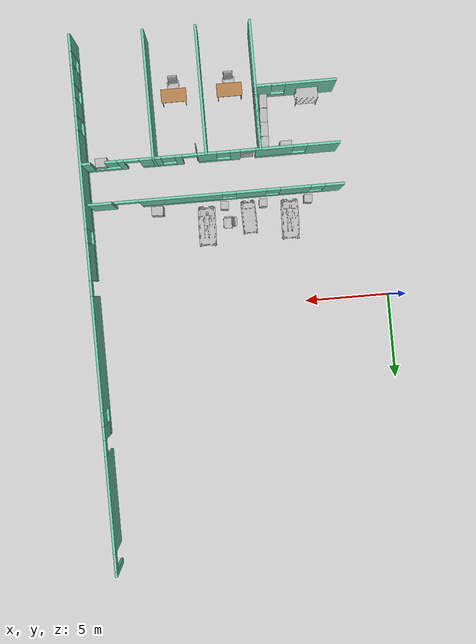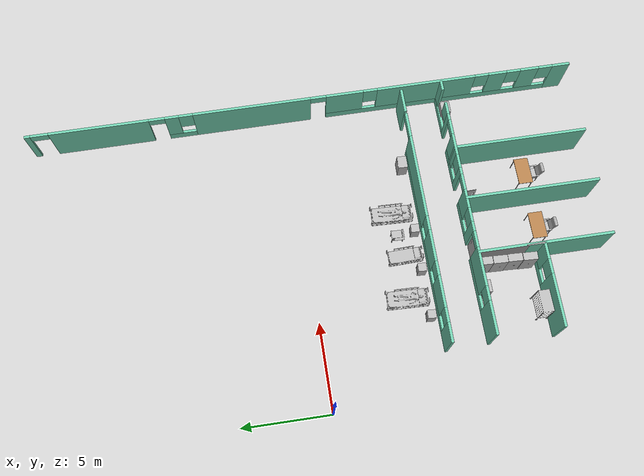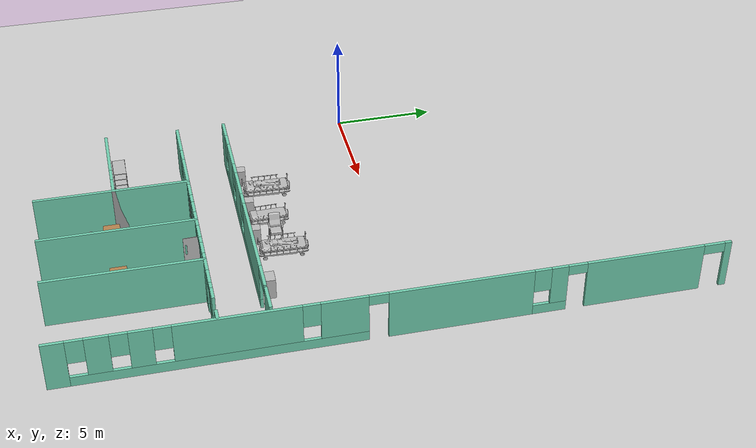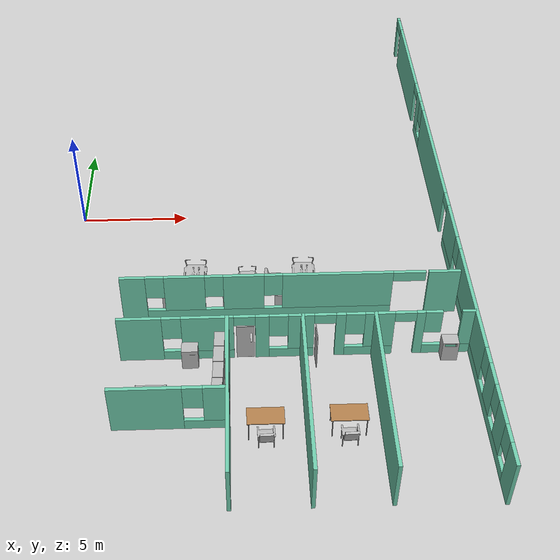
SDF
<sdf version="1.6">
 <world name="default">
  <model name="ground_plane">
   <static>1</static>
   <link name="link">
    <collision name="collision">
     <geometry><plane><normal>0 0 1</normal><size>100 100</size></plane></geometry>
     <surface><friction><ode><mu>100</mu><mu2>50</mu2></ode></friction></surface>
    </collision>
    <visual name="visual">
     <cast_shadows>0</cast_shadows>
     <geometry><plane><normal>0 0 1</normal><size>100 100</size></plane></geometry>
     <material>
      <script><uri>file://media/materials/scripts/gazebo.material</uri><name>Gazebo/Grey</name></script>
     </material>
    </visual>
   </link>
  </model>
  <model name="Hospital_empty">
   <pose>0.7078 0.61575 0 0 -0 0</pose>
   <link name="Wall_52">
    <pose>9.2135 -9.54001 0 0 -0 0.00176</pose>
    <visual name="Wall_52_Visual_0">
     <pose>-6.52704 0 1.25 0 -0 0</pose>
     <geometry><box><size>1.86895 0.15 2.5</size></box></geometry>
     <material>
      <script><uri>file://media/materials/scripts/gazebo.material</uri><name>Gazebo/Grey</name></script>
      <ambient>0.435294 0.796078 0.67451 1</ambient>
     </material>
    </visual>
    <collision name="Wall_52_Collision_0">
     <geometry><box><size>1.86895 0.15 2.5</size></box></geometry>
     <pose>-6.52704 0 1.25 0 -0 0</pose>
    </collision>
    <visual name="Wall_52_Visual_1">
     <pose>-1.42899 0 1.25 0 -0 0</pose>
     <geometry><box><size>0.56652 0.15 2.5</size></box></geometry>
     <material>
      <script><uri>file://media/materials/scripts/gazebo.material</uri><name>Gazebo/Grey</name></script>
      <ambient>0.435294 0.796078 0.67451 1</ambient>
     </material>
    </visual>
    <collision name="Wall_52_Collision_1">
     <geometry><box><size>0.56652 0.15 2.5</size></box></geometry>
     <pose>-1.42899 0 1.25 0 -0 0</pose>
    </collision>
    <visual name="Wall_52_Visual_2">
     <pose>1.84327 0 1.25 0 -0 0</pose>
     <geometry><box><size>0.408722 0.15 2.5</size></box></geometry>
     <material>
      <script><uri>file://media/materials/scripts/gazebo.material</uri><name>Gazebo/Grey</name></script>
      <ambient>0.435294 0.796078 0.67451 1</ambient>
     </material>
    </visual>
    <collision name="Wall_52_Collision_2">
     <geometry><box><size>0.408722 0.15 2.5</size></box></geometry>
     <pose>1.84327 0 1.25 0 -0 0</pose>
    </collision>
    <visual name="Wall_52_Visual_3">
     <pose>5.17521 0 1.25 0 -0 0</pose>
     <geometry><box><size>0.370303 0.15 2.5</size></box></geometry>
     <material>
      <script><uri>file://media/materials/scripts/gazebo.material</uri><name>Gazebo/Grey</name></script>
      <ambient>0.435294 0.796078 0.67451 1</ambient>
     </material>
    </visual>
    <collision name="Wall_52_Collision_3">
     <geometry><box><size>0.370303 0.15 2.5</size></box></geometry>
     <pose>5.17521 0 1.25 0 -0 0</pose>
    </collision>
    <visual name="Wall_52_Visual_4">
     <pose>-4.10241 0 0.25 0 -0 0</pose>
     <geometry><box><size>2.98031 0.15 0.5</size></box></geometry>
     <material>
      <script><uri>file://media/materials/scripts/gazebo.material</uri><name>Gazebo/Grey</name></script>
      <ambient>0.435294 0.796078 0.67451 1</ambient>
     </material>
    </visual>
    <collision name="Wall_52_Collision_4">
     <geometry><box><size>2.98031 0.15 0.5</size></box></geometry>
     <pose>-4.10241 0 0.25 0 -0 0</pose>
    </collision>
    <visual name="Wall_52_Visual_5">
     <pose>-0.203413 0 0.25 0 -0 0</pose>
     <geometry><box><size>1.88464 0.15 0.5</size></box></geometry>
     <material>
      <script><uri>file://media/materials/scripts/gazebo.material</uri><name>Gazebo/Grey</name></script>
      <ambient>0.435294 0.796078 0.67451 1</ambient>
     </material>
    </visual>
    <collision name="Wall_52_Collision_5">
     <geometry><box><size>1.88464 0.15 0.5</size></box></geometry>
     <pose>-0.203413 0 0.25 0 -0 0</pose>
    </collision>
    <visual name="Wall_52_Visual_6">
     <pose>3.06885 0 0.25 0 -0 0</pose>
     <geometry><box><size>2.04244 0.15 0.5</size></box></geometry>
     <material>
      <script><uri>file://media/materials/scripts/gazebo.material</uri><name>Gazebo/Grey</name></script>
      <ambient>0.435294 0.796078 0.67451 1</ambient>
     </material>
    </visual>
    <collision name="Wall_52_Collision_6">
     <geometry><box><size>2.04244 0.15 0.5</size></box></geometry>
     <pose>3.06885 0 0.25 0 -0 0</pose>
    </collision>
    <visual name="Wall_52_Visual_7">
     <pose>6.41094 0 0.25 0 -0 0</pose>
     <geometry><box><size>2.10114 0.15 0.5</size></box></geometry>
     <material>
      <script><uri>file://media/materials/scripts/gazebo.material</uri><name>Gazebo/Grey</name></script>
      <ambient>0.435294 0.796078 0.67451 1</ambient>
     </material>
    </visual>
    <collision name="Wall_52_Collision_7">
     <geometry><box><size>2.10114 0.15 0.5</size></box></geometry>
     <pose>6.41094 0 0.25 0 -0 0</pose>
    </collision>
    <visual name="Wall_52_Visual_8">
     <pose>-3.70241 0 1.5 0 -0 0</pose>
     <geometry><box><size>2.18031 0.15 2</size></box></geometry>
     <material>
      <script><uri>file://media/materials/scripts/gazebo.material</uri><name>Gazebo/Grey</name></script>
      <ambient>0.435294 0.796078 0.67451 1</ambient>
     </material>
    </visual>
    <collision name="Wall_52_Collision_8">
     <geometry><box><size>2.18031 0.15 2</size></box></geometry>
     <pose>-3.70241 0 1.5 0 -0 0</pose>
    </collision>
    <visual name="Wall_52_Visual_9">
     <pose>-3.70241 0 1.5 0 -0 0</pose>
     <geometry><box><size>2.18031 0.15 2</size></box></geometry>
     <material>
      <script><uri>file://media/materials/scripts/gazebo.material</uri><name>Gazebo/Grey</name></script>
      <ambient>0.435294 0.796078 0.67451 1</ambient>
     </material>
    </visual>
    <collision name="Wall_52_Collision_9">
     <geometry><box><size>2.18031 0.15 2</size></box></geometry>
     <pose>-3.70241 0 1.5 0 -0 0</pose>
    </collision>
    <visual name="Wall_52_Visual_10">
     <pose>0.196587 0 1.5 0 -0 0</pose>
     <geometry><box><size>1.08464 0.15 2</size></box></geometry>
     <material>
      <script><uri>file://media/materials/scripts/gazebo.material</uri><name>Gazebo/Grey</name></script>
      <ambient>0.435294 0.796078 0.67451 1</ambient>
     </material>
    </visual>
    <collision name="Wall_52_Collision_10">
     <geometry><box><size>1.08464 0.15 2</size></box></geometry>
     <pose>0.196587 0 1.5 0 -0 0</pose>
    </collision>
    <visual name="Wall_52_Visual_11">
     <pose>0.196587 0 1.5 0 -0 0</pose>
     <geometry><box><size>1.08464 0.15 2</size></box></geometry>
     <material>
      <script><uri>file://media/materials/scripts/gazebo.material</uri><name>Gazebo/Grey</name></script>
      <ambient>0.435294 0.796078 0.67451 1</ambient>
     </material>
    </visual>
    <collision name="Wall_52_Collision_11">
     <geometry><box><size>1.08464 0.15 2</size></box></geometry>
     <pose>0.196587 0 1.5 0 -0 0</pose>
    </collision>
    <visual name="Wall_52_Visual_12">
     <pose>3.46885 0 1.5 0 -0 0</pose>
     <geometry><box><size>1.24244 0.15 2</size></box></geometry>
     <material>
      <script><uri>file://media/materials/scripts/gazebo.material</uri><name>Gazebo/Grey</name></script>
      <ambient>0.435294 0.796078 0.67451 1</ambient>
     </material>
    </visual>
    <collision name="Wall_52_Collision_12">
     <geometry><box><size>1.24244 0.15 2</size></box></geometry>
     <pose>3.46885 0 1.5 0 -0 0</pose>
    </collision>
    <visual name="Wall_52_Visual_13">
     <pose>3.46885 0 1.5 0 -0 0</pose>
     <geometry><box><size>1.24244 0.15 2</size></box></geometry>
     <material>
      <script><uri>file://media/materials/scripts/gazebo.material</uri><name>Gazebo/Grey</name></script>
      <ambient>0.435294 0.796078 0.67451 1</ambient>
     </material>
    </visual>
    <collision name="Wall_52_Collision_13">
     <geometry><box><size>1.24244 0.15 2</size></box></geometry>
     <pose>3.46885 0 1.5 0 -0 0</pose>
    </collision>
    <visual name="Wall_52_Visual_14">
     <pose>7.16907 0 1.5 0 -0 0</pose>
     <geometry><box><size>0.584877 0.15 2</size></box></geometry>
     <material>
      <script><uri>file://media/materials/scripts/gazebo.material</uri><name>Gazebo/Grey</name></script>
      <ambient>0.435294 0.796078 0.67451 1</ambient>
     </material>
    </visual>
    <collision name="Wall_52_Collision_14">
     <geometry><box><size>0.584877 0.15 2</size></box></geometry>
     <pose>7.16907 0 1.5 0 -0 0</pose>
    </collision>
    <visual name="Wall_52_Visual_15">
     <pose>-5.19256 0 1.9 0 -0 0</pose>
     <geometry><box><size>0.8 0.15 1.2</size></box></geometry>
     <material>
      <script><uri>file://media/materials/scripts/gazebo.material</uri><name>Gazebo/Grey</name></script>
      <ambient>0.435294 0.796078 0.67451 1</ambient>
     </material>
    </visual>
    <collision name="Wall_52_Collision_15">
     <geometry><box><size>0.8 0.15 1.2</size></box></geometry>
     <pose>-5.19256 0 1.9 0 -0 0</pose>
    </collision>
    <visual name="Wall_52_Visual_16">
     <pose>-0.745733 0 1.9 0 -0 0</pose>
     <geometry><box><size>0.8 0.15 1.2</size></box></geometry>
     <material>
      <script><uri>file://media/materials/scripts/gazebo.material</uri><name>Gazebo/Grey</name></script>
      <ambient>0.435294 0.796078 0.67451 1</ambient>
     </material>
    </visual>
    <collision name="Wall_52_Collision_16">
     <geometry><box><size>0.8 0.15 1.2</size></box></geometry>
     <pose>-0.745733 0 1.9 0 -0 0</pose>
    </collision>
    <visual name="Wall_52_Visual_17">
     <pose>2.44763 0 1.9 0 -0 0</pose>
     <geometry><box><size>0.8 0.15 1.2</size></box></geometry>
     <material>
      <script><uri>file://media/materials/scripts/gazebo.material</uri><name>Gazebo/Grey</name></script>
      <ambient>0.435294 0.796078 0.67451 1</ambient>
     </material>
    </visual>
    <collision name="Wall_52_Collision_17">
     <geometry><box><size>0.8 0.15 1.2</size></box></geometry>
     <pose>2.44763 0 1.9 0 -0 0</pose>
    </collision>
    <visual name="Wall_52_Visual_18">
     <pose>5.7185 0 1.9 0 -0 0</pose>
     <geometry><box><size>0.716268 0.15 1.2</size></box></geometry>
     <material>
      <script><uri>file://media/materials/scripts/gazebo.material</uri><name>Gazebo/Grey</name></script>
      <ambient>0.435294 0.796078 0.67451 1</ambient>
     </material>
    </visual>
    <collision name="Wall_52_Collision_18">
     <geometry><box><size>0.716268 0.15 1.2</size></box></geometry>
     <pose>5.7185 0 1.9 0 -0 0</pose>
    </collision>
    <visual name="Wall_52_Visual_19">
     <pose>-2.16225 0 2.25 0 -0 0</pose>
     <geometry><box><size>0.9 0.15 0.5</size></box></geometry>
     <material>
      <script><uri>file://media/materials/scripts/gazebo.material</uri><name>Gazebo/Grey</name></script>
      <ambient>0.435294 0.796078 0.67451 1</ambient>
     </material>
    </visual>
    <collision name="Wall_52_Collision_19">
     <geometry><box><size>0.9 0.15 0.5</size></box></geometry>
     <pose>-2.16225 0 2.25 0 -0 0</pose>
    </collision>
    <visual name="Wall_52_Visual_20">
     <pose>-2.16225 0 2.25 0 -0 0</pose>
     <geometry><box><size>0.9 0.15 0.5</size></box></geometry>
     <material>
      <script><uri>file://media/materials/scripts/gazebo.material</uri><name>Gazebo/Grey</name></script>
      <ambient>0.435294 0.796078 0.67451 1</ambient>
     </material>
    </visual>
    <collision name="Wall_52_Collision_20">
     <geometry><box><size>0.9 0.15 0.5</size></box></geometry>
     <pose>-2.16225 0 2.25 0 -0 0</pose>
    </collision>
    <visual name="Wall_52_Visual_21">
     <pose>1.18891 0 2.25 0 -0 0</pose>
     <geometry><box><size>0.9 0.15 0.5</size></box></geometry>
     <material>
      <script><uri>file://media/materials/scripts/gazebo.material</uri><name>Gazebo/Grey</name></script>
      <ambient>0.435294 0.796078 0.67451 1</ambient>
     </material>
    </visual>
    <collision name="Wall_52_Collision_21">
     <geometry><box><size>0.9 0.15 0.5</size></box></geometry>
     <pose>1.18891 0 2.25 0 -0 0</pose>
    </collision>
    <visual name="Wall_52_Visual_22">
     <pose>1.18891 0 2.25 0 -0 0</pose>
     <geometry><box><size>0.9 0.15 0.5</size></box></geometry>
     <material>
      <script><uri>file://media/materials/scripts/gazebo.material</uri><name>Gazebo/Grey</name></script>
      <ambient>0.435294 0.796078 0.67451 1</ambient>
     </material>
    </visual>
    <collision name="Wall_52_Collision_22">
     <geometry><box><size>0.9 0.15 0.5</size></box></geometry>
     <pose>1.18891 0 2.25 0 -0 0</pose>
    </collision>
    <visual name="Wall_52_Visual_23">
     <pose>4.54006 0 2.25 0 -0 0</pose>
     <geometry><box><size>0.9 0.15 0.5</size></box></geometry>
     <material>
      <script><uri>file://media/materials/scripts/gazebo.material</uri><name>Gazebo/Grey</name></script>
      <ambient>0.435294 0.796078 0.67451 1</ambient>
     </material>
    </visual>
    <collision name="Wall_52_Collision_23">
     <geometry><box><size>0.9 0.15 0.5</size></box></geometry>
     <pose>4.54006 0 2.25 0 -0 0</pose>
    </collision>
    <visual name="Wall_52_Visual_24">
     <pose>4.54006 0 2.25 0 -0 0</pose>
     <geometry><box><size>0.9 0.15 0.5</size></box></geometry>
     <material>
      <script><uri>file://media/materials/scripts/gazebo.material</uri><name>Gazebo/Grey</name></script>
      <ambient>0.435294 0.796078 0.67451 1</ambient>
     </material>
    </visual>
    <collision name="Wall_52_Collision_24">
     <geometry><box><size>0.9 0.15 0.5</size></box></geometry>
     <pose>4.54006 0 2.25 0 -0 0</pose>
    </collision>
   </link>
   <link name="Wall_54">
    <pose>16.6784 -1.42889 0 0 -0 1.57237</pose>
    <visual name="Wall_54_Visual_0">
     <pose>-15.1174 0 1.25 0 -0 0</pose>
     <geometry><box><size>1.01516 0.15 2.5</size></box></geometry>
     <material>
      <script><uri>file://media/materials/scripts/gazebo.material</uri><name>Gazebo/Grey</name></script>
      <ambient>0.435294 0.796078 0.67451 1</ambient>
     </material>
    </visual>
    <collision name="Wall_54_Collision_0">
     <geometry><box><size>1.01516 0.15 2.5</size></box></geometry>
     <pose>-15.1174 0 1.25 0 -0 0</pose>
    </collision>
    <visual name="Wall_54_Visual_1">
     <pose>2.81142 0 1.25 0 -0 0</pose>
     <geometry><box><size>6.71487 0.15 2.5</size></box></geometry>
     <material>
      <script><uri>file://media/materials/scripts/gazebo.material</uri><name>Gazebo/Grey</name></script>
      <ambient>0.435294 0.796078 0.67451 1</ambient>
     </material>
    </visual>
    <collision name="Wall_54_Collision_1">
     <geometry><box><size>6.71487 0.15 2.5</size></box></geometry>
     <pose>2.81142 0 1.25 0 -0 0</pose>
    </collision>
    <visual name="Wall_54_Visual_2">
     <pose>11.474 0 1.25 0 -0 0</pose>
     <geometry><box><size>5.63286 0.15 2.5</size></box></geometry>
     <material>
      <script><uri>file://media/materials/scripts/gazebo.material</uri><name>Gazebo/Grey</name></script>
      <ambient>0.435294 0.796078 0.67451 1</ambient>
     </material>
    </visual>
    <collision name="Wall_54_Collision_2">
     <geometry><box><size>5.63286 0.15 2.5</size></box></geometry>
     <pose>11.474 0 1.25 0 -0 0</pose>
    </collision>
    <visual name="Wall_54_Visual_3">
     <pose>15.4602 0 1.25 0 -0 0</pose>
     <geometry><box><size>0.329522 0.15 2.5</size></box></geometry>
     <material>
      <script><uri>file://media/materials/scripts/gazebo.material</uri><name>Gazebo/Grey</name></script>
      <ambient>0.435294 0.796078 0.67451 1</ambient>
     </material>
    </visual>
    <collision name="Wall_54_Collision_3">
     <geometry><box><size>0.329522 0.15 2.5</size></box></geometry>
     <pose>15.4602 0 1.25 0 -0 0</pose>
    </collision>
    <visual name="Wall_54_Visual_4">
     <pose>-8.02793 0 0.25 0 -0 0</pose>
     <geometry><box><size>13.1638 0.15 0.5</size></box></geometry>
     <material>
      <script><uri>file://media/materials/scripts/gazebo.material</uri><name>Gazebo/Grey</name></script>
      <ambient>0.435294 0.796078 0.67451 1</ambient>
     </material>
    </visual>
    <collision name="Wall_54_Collision_4">
     <geometry><box><size>13.1638 0.15 0.5</size></box></geometry>
     <pose>-8.02793 0 0.25 0 -0 0</pose>
    </collision>
    <visual name="Wall_54_Visual_5">
     <pose>6.96319 0 0.25 0 -0 0</pose>
     <geometry><box><size>1.58869 0.15 0.5</size></box></geometry>
     <material>
      <script><uri>file://media/materials/scripts/gazebo.material</uri><name>Gazebo/Grey</name></script>
      <ambient>0.435294 0.796078 0.67451 1</ambient>
     </material>
    </visual>
    <collision name="Wall_54_Collision_5">
     <geometry><box><size>1.58869 0.15 0.5</size></box></geometry>
     <pose>6.96319 0 0.25 0 -0 0</pose>
    </collision>
    <visual name="Wall_54_Visual_6">
     <pose>-13.2798 0 1.5 0 -0 0</pose>
     <geometry><box><size>1.0601 0.15 2</size></box></geometry>
     <material>
      <script><uri>file://media/materials/scripts/gazebo.material</uri><name>Gazebo/Grey</name></script>
      <ambient>0.435294 0.796078 0.67451 1</ambient>
     </material>
    </visual>
    <collision name="Wall_54_Collision_6">
     <geometry><box><size>1.0601 0.15 2</size></box></geometry>
     <pose>-13.2798 0 1.5 0 -0 0</pose>
    </collision>
    <visual name="Wall_54_Visual_7">
     <pose>-11.4197 0 1.5 0 -0 0</pose>
     <geometry><box><size>1.0601 0.15 2</size></box></geometry>
     <material>
      <script><uri>file://media/materials/scripts/gazebo.material</uri><name>Gazebo/Grey</name></script>
      <ambient>0.435294 0.796078 0.67451 1</ambient>
     </material>
    </visual>
    <collision name="Wall_54_Collision_7">
     <geometry><box><size>1.0601 0.15 2</size></box></geometry>
     <pose>-11.4197 0 1.5 0 -0 0</pose>
    </collision>
    <visual name="Wall_54_Visual_8">
     <pose>-7.2458 0 1.5 0 -0 0</pose>
     <geometry><box><size>5.68767 0.15 2</size></box></geometry>
     <material>
      <script><uri>file://media/materials/scripts/gazebo.material</uri><name>Gazebo/Grey</name></script>
      <ambient>0.435294 0.796078 0.67451 1</ambient>
     </material>
    </visual>
    <collision name="Wall_54_Collision_8">
     <geometry><box><size>5.68767 0.15 2</size></box></geometry>
     <pose>-7.2458 0 1.5 0 -0 0</pose>
    </collision>
    <visual name="Wall_54_Visual_9">
     <pose>-2.52399 0 1.5 0 -0 0</pose>
     <geometry><box><size>2.15595 0.15 2</size></box></geometry>
     <material>
      <script><uri>file://media/materials/scripts/gazebo.material</uri><name>Gazebo/Grey</name></script>
      <ambient>0.435294 0.796078 0.67451 1</ambient>
     </material>
    </visual>
    <collision name="Wall_54_Collision_9">
     <geometry><box><size>2.15595 0.15 2</size></box></geometry>
     <pose>-2.52399 0 1.5 0 -0 0</pose>
    </collision>
    <visual name="Wall_54_Visual_10">
     <pose>-2.52399 0 1.5 0 -0 0</pose>
     <geometry><box><size>2.15595 0.15 2</size></box></geometry>
     <material>
      <script><uri>file://media/materials/scripts/gazebo.material</uri><name>Gazebo/Grey</name></script>
      <ambient>0.435294 0.796078 0.67451 1</ambient>
     </material>
    </visual>
    <collision name="Wall_54_Collision_10">
     <geometry><box><size>2.15595 0.15 2</size></box></geometry>
     <pose>-2.52399 0 1.5 0 -0 0</pose>
    </collision>
    <visual name="Wall_54_Visual_11">
     <pose>7.36319 0 1.5 0 -0 0</pose>
     <geometry><box><size>0.788686 0.15 2</size></box></geometry>
     <material>
      <script><uri>file://media/materials/scripts/gazebo.material</uri><name>Gazebo/Grey</name></script>
      <ambient>0.435294 0.796078 0.67451 1</ambient>
     </material>
    </visual>
    <collision name="Wall_54_Collision_11">
     <geometry><box><size>0.788686 0.15 2</size></box></geometry>
     <pose>7.36319 0 1.5 0 -0 0</pose>
    </collision>
    <visual name="Wall_54_Visual_12">
     <pose>-14.2098 0 1.9 0 -0 0</pose>
     <geometry><box><size>0.8 0.15 1.2</size></box></geometry>
     <material>
      <script><uri>file://media/materials/scripts/gazebo.material</uri><name>Gazebo/Grey</name></script>
      <ambient>0.435294 0.796078 0.67451 1</ambient>
     </material>
    </visual>
    <collision name="Wall_54_Collision_12">
     <geometry><box><size>0.8 0.15 1.2</size></box></geometry>
     <pose>-14.2098 0 1.9 0 -0 0</pose>
    </collision>
    <visual name="Wall_54_Visual_13">
     <pose>6.56885 0 1.9 0 -0 0</pose>
     <geometry><box><size>0.8 0.15 1.2</size></box></geometry>
     <material>
      <script><uri>file://media/materials/scripts/gazebo.material</uri><name>Gazebo/Grey</name></script>
      <ambient>0.435294 0.796078 0.67451 1</ambient>
     </material>
    </visual>
    <collision name="Wall_54_Collision_13">
     <geometry><box><size>0.8 0.15 1.2</size></box></geometry>
     <pose>6.56885 0 1.9 0 -0 0</pose>
    </collision>
    <visual name="Wall_54_Visual_14">
     <pose>-12.3497 0 1.9 0 -0 0</pose>
     <geometry><box><size>0.8 0.15 1.2</size></box></geometry>
     <material>
      <script><uri>file://media/materials/scripts/gazebo.material</uri><name>Gazebo/Grey</name></script>
      <ambient>0.435294 0.796078 0.67451 1</ambient>
     </material>
    </visual>
    <collision name="Wall_54_Collision_14">
     <geometry><box><size>0.8 0.15 1.2</size></box></geometry>
     <pose>-12.3497 0 1.9 0 -0 0</pose>
    </collision>
    <visual name="Wall_54_Visual_15">
     <pose>-10.4896 0 1.9 0 -0 0</pose>
     <geometry><box><size>0.8 0.15 1.2</size></box></geometry>
     <material>
      <script><uri>file://media/materials/scripts/gazebo.material</uri><name>Gazebo/Grey</name></script>
      <ambient>0.435294 0.796078 0.67451 1</ambient>
     </material>
    </visual>
    <collision name="Wall_54_Collision_15">
     <geometry><box><size>0.8 0.15 1.2</size></box></geometry>
     <pose>-10.4896 0 1.9 0 -0 0</pose>
    </collision>
    <visual name="Wall_54_Visual_16">
     <pose>-4.00197 0 1.9 0 -0 0</pose>
     <geometry><box><size>0.8 0.15 1.2</size></box></geometry>
     <material>
      <script><uri>file://media/materials/scripts/gazebo.material</uri><name>Gazebo/Grey</name></script>
      <ambient>0.435294 0.796078 0.67451 1</ambient>
     </material>
    </visual>
    <collision name="Wall_54_Collision_16">
     <geometry><box><size>0.8 0.15 1.2</size></box></geometry>
     <pose>-4.00197 0 1.9 0 -0 0</pose>
    </collision>
    <visual name="Wall_54_Visual_17">
     <pose>14.7929 0 2.25 0 -0 0</pose>
     <geometry><box><size>1.00508 0.15 0.5</size></box></geometry>
     <material>
      <script><uri>file://media/materials/scripts/gazebo.material</uri><name>Gazebo/Grey</name></script>
      <ambient>0.435294 0.796078 0.67451 1</ambient>
     </material>
    </visual>
    <collision name="Wall_54_Collision_17">
     <geometry><box><size>1.00508 0.15 0.5</size></box></geometry>
     <pose>14.7929 0 2.25 0 -0 0</pose>
    </collision>
    <visual name="Wall_54_Visual_18">
     <pose>-0.996017 0 2.25 0 -0 0</pose>
     <geometry><box><size>0.9 0.15 0.5</size></box></geometry>
     <material>
      <script><uri>file://media/materials/scripts/gazebo.material</uri><name>Gazebo/Grey</name></script>
      <ambient>0.435294 0.796078 0.67451 1</ambient>
     </material>
    </visual>
    <collision name="Wall_54_Collision_18">
     <geometry><box><size>0.9 0.15 0.5</size></box></geometry>
     <pose>-0.996017 0 2.25 0 -0 0</pose>
    </collision>
    <visual name="Wall_54_Visual_19">
     <pose>-0.996017 0 2.25 0 -0 0</pose>
     <geometry><box><size>0.9 0.15 0.5</size></box></geometry>
     <material>
      <script><uri>file://media/materials/scripts/gazebo.material</uri><name>Gazebo/Grey</name></script>
      <ambient>0.435294 0.796078 0.67451 1</ambient>
     </material>
    </visual>
    <collision name="Wall_54_Collision_19">
     <geometry><box><size>0.9 0.15 0.5</size></box></geometry>
     <pose>-0.996017 0 2.25 0 -0 0</pose>
    </collision>
    <visual name="Wall_54_Visual_20">
     <pose>8.20754 0 2.25 0 -0 0</pose>
     <geometry><box><size>0.9 0.15 0.5</size></box></geometry>
     <material>
      <script><uri>file://media/materials/scripts/gazebo.material</uri><name>Gazebo/Grey</name></script>
      <ambient>0.435294 0.796078 0.67451 1</ambient>
     </material>
    </visual>
    <collision name="Wall_54_Collision_20">
     <geometry><box><size>0.9 0.15 0.5</size></box></geometry>
     <pose>8.20754 0 2.25 0 -0 0</pose>
    </collision>
   </link>
   <link name="Wall_71">
    <pose>9.078 -7.17901 0 0 -0 0</pose>
    <visual name="Wall_71_Visual_0">
     <pose>-6.82343 0 1.25 0 -0 0</pose>
     <geometry><box><size>1.10315 0.15 2.5</size></box></geometry>
     <material>
      <script><uri>file://media/materials/scripts/gazebo.material</uri><name>Gazebo/Grey</name></script>
      <ambient>0.435294 0.796078 0.67451 1</ambient>
     </material>
    </visual>
    <collision name="Wall_71_Collision_0">
     <geometry><box><size>1.10315 0.15 2.5</size></box></geometry>
     <pose>-6.82343 0 1.25 0 -0 0</pose>
    </collision>
    <visual name="Wall_71_Visual_1">
     <pose>6.68282 0 1.25 0 -0 0</pose>
     <geometry><box><size>1.38436 0.15 2.5</size></box></geometry>
     <material>
      <script><uri>file://media/materials/scripts/gazebo.material</uri><name>Gazebo/Grey</name></script>
      <ambient>0.435294 0.796078 0.67451 1</ambient>
     </material>
    </visual>
    <collision name="Wall_71_Collision_1">
     <geometry><box><size>1.38436 0.15 2.5</size></box></geometry>
     <pose>6.68282 0 1.25 0 -0 0</pose>
    </collision>
    <visual name="Wall_71_Visual_2">
     <pose>-0.909227 0 0.25 0 -0 0</pose>
     <geometry><box><size>10.7253 0.15 0.5</size></box></geometry>
     <material>
      <script><uri>file://media/materials/scripts/gazebo.material</uri><name>Gazebo/Grey</name></script>
      <ambient>0.435294 0.796078 0.67451 1</ambient>
     </material>
    </visual>
    <collision name="Wall_71_Collision_2">
     <geometry><box><size>10.7253 0.15 0.5</size></box></geometry>
     <pose>-0.909227 0 0.25 0 -0 0</pose>
    </collision>
    <visual name="Wall_71_Visual_3">
     <pose>-4.5897 0 1.5 0 -0 0</pose>
     <geometry><box><size>1.76431 0.15 2</size></box></geometry>
     <material>
      <script><uri>file://media/materials/scripts/gazebo.material</uri><name>Gazebo/Grey</name></script>
      <ambient>0.435294 0.796078 0.67451 1</ambient>
     </material>
    </visual>
    <collision name="Wall_71_Collision_3">
     <geometry><box><size>1.76431 0.15 2</size></box></geometry>
     <pose>-4.5897 0 1.5 0 -0 0</pose>
    </collision>
    <visual name="Wall_71_Visual_4">
     <pose>-2.02538 0 1.5 0 -0 0</pose>
     <geometry><box><size>1.76431 0.15 2</size></box></geometry>
     <material>
      <script><uri>file://media/materials/scripts/gazebo.material</uri><name>Gazebo/Grey</name></script>
      <ambient>0.435294 0.796078 0.67451 1</ambient>
     </material>
    </visual>
    <collision name="Wall_71_Collision_4">
     <geometry><box><size>1.76431 0.15 2</size></box></geometry>
     <pose>-2.02538 0 1.5 0 -0 0</pose>
    </collision>
    <visual name="Wall_71_Visual_5">
     <pose>2.05509 0 1.5 0 -0 0</pose>
     <geometry><box><size>4.79663 0.15 2</size></box></geometry>
     <material>
      <script><uri>file://media/materials/scripts/gazebo.material</uri><name>Gazebo/Grey</name></script>
      <ambient>0.435294 0.796078 0.67451 1</ambient>
     </material>
    </visual>
    <collision name="Wall_71_Collision_5">
     <geometry><box><size>4.79663 0.15 2</size></box></geometry>
     <pose>2.05509 0 1.5 0 -0 0</pose>
    </collision>
    <visual name="Wall_71_Visual_6">
     <pose>-5.87186 0 1.9 0 -0 0</pose>
     <geometry><box><size>0.8 0.15 1.2</size></box></geometry>
     <material>
      <script><uri>file://media/materials/scripts/gazebo.material</uri><name>Gazebo/Grey</name></script>
      <ambient>0.435294 0.796078 0.67451 1</ambient>
     </material>
    </visual>
    <collision name="Wall_71_Collision_6">
     <geometry><box><size>0.8 0.15 1.2</size></box></geometry>
     <pose>-5.87186 0 1.9 0 -0 0</pose>
    </collision>
    <visual name="Wall_71_Visual_7">
     <pose>-3.30754 0 1.9 0 -0 0</pose>
     <geometry><box><size>0.8 0.15 1.2</size></box></geometry>
     <material>
      <script><uri>file://media/materials/scripts/gazebo.material</uri><name>Gazebo/Grey</name></script>
      <ambient>0.435294 0.796078 0.67451 1</ambient>
     </material>
    </visual>
    <collision name="Wall_71_Collision_7">
     <geometry><box><size>0.8 0.15 1.2</size></box></geometry>
     <pose>-3.30754 0 1.9 0 -0 0</pose>
    </collision>
    <visual name="Wall_71_Visual_8">
     <pose>-0.743228 0 1.9 0 -0 0</pose>
     <geometry><box><size>0.8 0.15 1.2</size></box></geometry>
     <material>
      <script><uri>file://media/materials/scripts/gazebo.material</uri><name>Gazebo/Grey</name></script>
      <ambient>0.435294 0.796078 0.67451 1</ambient>
     </material>
    </visual>
    <collision name="Wall_71_Collision_8">
     <geometry><box><size>0.8 0.15 1.2</size></box></geometry>
     <pose>-0.743228 0 1.9 0 -0 0</pose>
    </collision>
    <visual name="Wall_71_Visual_9">
     <pose>5.1598 0 2.25 0 -0 0</pose>
     <geometry><box><size>1.41281 0.15 0.5</size></box></geometry>
     <material>
      <script><uri>file://media/materials/scripts/gazebo.material</uri><name>Gazebo/Grey</name></script>
      <ambient>0.435294 0.796078 0.67451 1</ambient>
     </material>
    </visual>
    <collision name="Wall_71_Collision_9">
     <geometry><box><size>1.41281 0.15 0.5</size></box></geometry>
     <pose>5.1598 0 2.25 0 -0 0</pose>
    </collision>
   </link>
   <link name="Wall_74">
    <pose>4.025 -13.151 0 0 -0 0</pose>
    <visual name="Wall_74_Visual_0">
     <pose>-0.912207 0 1.25 0 -0 0</pose>
     <geometry><box><size>2.92559 0.15 2.5</size></box></geometry>
     <material>
      <script><uri>file://media/materials/scripts/gazebo.material</uri><name>Gazebo/Grey</name></script>
      <ambient>0.435294 0.796078 0.67451 1</ambient>
     </material>
    </visual>
    <collision name="Wall_74_Collision_0">
     <geometry><box><size>2.92559 0.15 2.5</size></box></geometry>
     <pose>-0.912207 0 1.25 0 -0 0</pose>
    </collision>
    <visual name="Wall_74_Visual_1">
     <pose>1.46279 0 0.25 0 -0 0</pose>
     <geometry><box><size>1.82441 0.15 0.5</size></box></geometry>
     <material>
      <script><uri>file://media/materials/scripts/gazebo.material</uri><name>Gazebo/Grey</name></script>
      <ambient>0.435294 0.796078 0.67451 1</ambient>
     </material>
    </visual>
    <collision name="Wall_74_Collision_1">
     <geometry><box><size>1.82441 0.15 0.5</size></box></geometry>
     <pose>1.46279 0 0.25 0 -0 0</pose>
    </collision>
    <visual name="Wall_74_Visual_2">
     <pose>1.86279 0 1.5 0 -0 0</pose>
     <geometry><box><size>1.02441 0.15 2</size></box></geometry>
     <material>
      <script><uri>file://media/materials/scripts/gazebo.material</uri><name>Gazebo/Grey</name></script>
      <ambient>0.435294 0.796078 0.67451 1</ambient>
     </material>
    </visual>
    <collision name="Wall_74_Collision_2">
     <geometry><box><size>1.02441 0.15 2</size></box></geometry>
     <pose>1.86279 0 1.5 0 -0 0</pose>
    </collision>
    <visual name="Wall_74_Visual_3">
     <pose>0.950586 0 1.9 0 -0 0</pose>
     <geometry><box><size>0.8 0.15 1.2</size></box></geometry>
     <material>
      <script><uri>file://media/materials/scripts/gazebo.material</uri><name>Gazebo/Grey</name></script>
      <ambient>0.435294 0.796078 0.67451 1</ambient>
     </material>
    </visual>
    <collision name="Wall_74_Collision_3">
     <geometry><box><size>0.8 0.15 1.2</size></box></geometry>
     <pose>0.950586 0 1.9 0 -0 0</pose>
    </collision>
   </link>
   <link name="Wall_75">
    <collision name="Wall_75_Collision">
     <geometry><box><size>3.75 0.15 2.5</size></box></geometry>
     <pose>0 0 1.25 0 -0 0</pose>
    </collision>
    <visual name="Wall_75_Visual">
     <pose>0 0 1.25 0 -0 0</pose>
     <geometry><box><size>3.75 0.15 2.5</size></box></geometry>
     <material>
      <script><uri>file://media/materials/scripts/gazebo.material</uri><name>Gazebo/Grey</name></script>
      <ambient>1 1 1 1</ambient>
     </material>
    </visual>
    <pose>6.325 -11.351 0 0 -0 1.5708</pose>
   </link>
   <link name="Wall_76">
    <collision name="Wall_76_Collision">
     <geometry><box><size>7.5 0.15 2.5</size></box></geometry>
     <pose>0 0 1.25 0 -0 0</pose>
    </collision>
    <visual name="Wall_76_Visual">
     <pose>0 0 1.25 0 -0 0</pose>
     <geometry><box><size>7.5 0.15 2.5</size></box></geometry>
     <material>
      <script><uri>file://media/materials/scripts/gazebo.material</uri><name>Gazebo/Grey</name></script>
      <ambient>0.435294 0.796078 0.67451 1</ambient>
     </material>
    </visual>
    <pose>6.325 -13.226 0 0 0 -1.5708</pose>
   </link>
   <link name="Wall_78">
    <collision name="Wall_78_Collision">
     <geometry><box><size>7.5 0.15 2.5</size></box></geometry>
     <pose>0 0 1.25 0 -0 0</pose>
    </collision>
    <visual name="Wall_78_Visual">
     <pose>0 0 1.25 0 -0 0</pose>
     <geometry><box><size>7.5 0.15 2.5</size></box></geometry>
     <material>
      <script><uri>file://media/materials/scripts/gazebo.material</uri><name>Gazebo/Grey</name></script>
      <ambient>0.435294 0.796078 0.67451 1</ambient>
     </material>
    </visual>
    <pose>9.457 -13.218 0 0 0 -1.5708</pose>
   </link>
   <link name="Wall_80">
    <collision name="Wall_80_Collision">
     <geometry><box><size>7.5 0.15 2.5</size></box></geometry>
     <pose>0 0 1.25 0 -0 0</pose>
    </collision>
    <visual name="Wall_80_Visual">
     <pose>0 0 1.25 0 -0 0</pose>
     <geometry><box><size>7.5 0.15 2.5</size></box></geometry>
     <material>
      <script><uri>file://media/materials/scripts/gazebo.material</uri><name>Gazebo/Grey</name></script>
      <ambient>0.435294 0.796078 0.67451 1</ambient>
     </material>
    </visual>
    <pose>12.499 -13.207 0 0 0 -1.5708</pose>
   </link>
   <static>1</static>
  </model>
  <model name="MetalCabinet_clone_clone_clone">
   <static>1</static>
   <link name="body">
    <visual name="visual">
     <geometry><mesh><uri>model://MetalCabinet/meshes/MetalCabinet.obj</uri></mesh></geometry>
    </visual>
    <collision name="collision">
     <geometry><mesh><uri>model://MetalCabinet/meshes/MetalCabinet.obj</uri></mesh></geometry>
    </collision>
   </link>
   <pose>6.69678 -9.37252 0 0 0 -1.61154</pose>
  </model>
  <model name="MetalCabinet_clone_clone_clone_clone">
   <static>1</static>
   <link name="body">
    <visual name="visual">
     <geometry><mesh><uri>model://MetalCabinet/meshes/MetalCabinet.obj</uri></mesh></geometry>
    </visual>
    <collision name="collision">
     <geometry><mesh><uri>model://MetalCabinet/meshes/MetalCabinet.obj</uri></mesh></geometry>
    </collision>
   </link>
   <pose>6.6668 -10.1968 0 0 0 -1.61154</pose>
  </model>
  <model name="MetalCabinet_clone_clone_clone_clone_0">
   <static>1</static>
   <link name="body">
    <visual name="visual">
     <geometry><mesh><uri>model://MetalCabinet/meshes/MetalCabinet.obj</uri></mesh></geometry>
    </visual>
    <collision name="collision">
     <geometry><mesh><uri>model://MetalCabinet/meshes/MetalCabinet.obj</uri></mesh></geometry>
    </collision>
   </link>
   <pose>6.64893 -11.014 0 0 0 -1.61154</pose>
  </model>
  <model name="MetalCabinet_clone_clone_clone_clone_1">
   <static>1</static>
   <link name="body">
    <visual name="visual">
     <geometry><mesh><uri>model://MetalCabinet/meshes/MetalCabinet.obj</uri></mesh></geometry>
    </visual>
    <collision name="collision">
     <geometry><mesh><uri>model://MetalCabinet/meshes/MetalCabinet.obj</uri></mesh></geometry>
    </collision>
   </link>
   <pose>6.6043 -11.8394 0 0 0 -1.61154</pose>
  </model>
  <model name="ElectronicsRecycling">
   <static>1</static>
   <link name="body">
    <visual name="visual">
     <geometry><mesh><uri>model://ElectronicsRecycling/meshes/bin.obj</uri></mesh></geometry>
    </visual>
    <collision name="collision">
     <geometry><mesh><uri>model://ElectronicsRecycling/meshes/bin.obj</uri></mesh></geometry>
    </collision>
   </link>
   <pose>5.44651 -8.98992 0 0 -0 0</pose>
  </model>
  <model name="table">
   <static>1</static>
   <link name="link">
    <collision name="surface">
     <pose>0 0 1 0 -0 0</pose>
     <geometry><box><size>1.5 0.8 0.03</size></box></geometry>
     <surface><friction><ode><mu>0.6</mu><mu2>0.6</mu2></ode></friction></surface>
    </collision>
    <visual name="visual1">
     <pose>0 0 1 0 -0 0</pose>
     <geometry><box><size>1.5 0.8 0.03</size></box></geometry>
     <material>
      <script><uri>file://media/materials/scripts/gazebo.material</uri><name>Gazebo/Wood</name></script>
     </material>
    </visual>
    <collision name="front_left_leg">
     <pose>0.68 0.38 0.5 0 -0 0</pose>
     <geometry><cylinder><radius>0.02</radius><length>1</length></cylinder></geometry>
    </collision>
    <visual name="front_left_leg">
     <pose>0.68 0.38 0.5 0 -0 0</pose>
     <geometry><cylinder><radius>0.02</radius><length>1</length></cylinder></geometry>
     <material>
      <script><uri>file://media/materials/scripts/gazebo.material</uri><name>Gazebo/Grey</name></script>
     </material>
    </visual>
    <collision name="front_right_leg">
     <pose>0.68 -0.38 0.5 0 -0 0</pose>
     <geometry><cylinder><radius>0.02</radius><length>1</length></cylinder></geometry>
    </collision>
    <visual name="front_right_leg">
     <pose>0.68 -0.38 0.5 0 -0 0</pose>
     <geometry><cylinder><radius>0.02</radius><length>1</length></cylinder></geometry>
     <material>
      <script><uri>file://media/materials/scripts/gazebo.material</uri><name>Gazebo/Grey</name></script>
     </material>
    </visual>
    <collision name="back_right_leg">
     <pose>-0.68 -0.38 0.5 0 -0 0</pose>
     <geometry><cylinder><radius>0.02</radius><length>1</length></cylinder></geometry>
    </collision>
    <visual name="back_right_leg">
     <pose>-0.68 -0.38 0.5 0 -0 0</pose>
     <geometry><cylinder><radius>0.02</radius><length>1</length></cylinder></geometry>
     <material>
      <script><uri>file://media/materials/scripts/gazebo.material</uri><name>Gazebo/Grey</name></script>
     </material>
    </visual>
    <collision name="back_left_leg">
     <pose>-0.68 0.38 0.5 0 -0 0</pose>
     <geometry><cylinder><radius>0.02</radius><length>1</length></cylinder></geometry>
    </collision>
    <visual name="back_left_leg">
     <pose>-0.68 0.38 0.5 0 -0 0</pose>
     <geometry><cylinder><radius>0.02</radius><length>1</length></cylinder></geometry>
     <material>
      <script><uri>file://media/materials/scripts/gazebo.material</uri><name>Gazebo/Grey</name></script>
     </material>
    </visual>
   </link>
   <pose>8.50586 -12.8424 0 0 -0 0</pose>
  </model>
  <model name="table_0">
   <static>1</static>
   <link name="link">
    <collision name="surface">
     <pose>0 0 1 0 -0 0</pose>
     <geometry><box><size>1.5 0.8 0.03</size></box></geometry>
     <surface><friction><ode><mu>0.6</mu><mu2>0.6</mu2></ode></friction></surface>
    </collision>
    <visual name="visual1">
     <pose>0 0 1 0 -0 0</pose>
     <geometry><box><size>1.5 0.8 0.03</size></box></geometry>
     <material>
      <script><uri>file://media/materials/scripts/gazebo.material</uri><name>Gazebo/Wood</name></script>
     </material>
    </visual>
    <collision name="front_left_leg">
     <pose>0.68 0.38 0.5 0 -0 0</pose>
     <geometry><cylinder><radius>0.02</radius><length>1</length></cylinder></geometry>
    </collision>
    <visual name="front_left_leg">
     <pose>0.68 0.38 0.5 0 -0 0</pose>
     <geometry><cylinder><radius>0.02</radius><length>1</length></cylinder></geometry>
     <material>
      <script><uri>file://media/materials/scripts/gazebo.material</uri><name>Gazebo/Grey</name></script>
     </material>
    </visual>
    <collision name="front_right_leg">
     <pose>0.68 -0.38 0.5 0 -0 0</pose>
     <geometry><cylinder><radius>0.02</radius><length>1</length></cylinder></geometry>
    </collision>
    <visual name="front_right_leg">
     <pose>0.68 -0.38 0.5 0 -0 0</pose>
     <geometry><cylinder><radius>0.02</radius><length>1</length></cylinder></geometry>
     <material>
      <script><uri>file://media/materials/scripts/gazebo.material</uri><name>Gazebo/Grey</name></script>
     </material>
    </visual>
    <collision name="back_right_leg">
     <pose>-0.68 -0.38 0.5 0 -0 0</pose>
     <geometry><cylinder><radius>0.02</radius><length>1</length></cylinder></geometry>
    </collision>
    <visual name="back_right_leg">
     <pose>-0.68 -0.38 0.5 0 -0 0</pose>
     <geometry><cylinder><radius>0.02</radius><length>1</length></cylinder></geometry>
     <material>
      <script><uri>file://media/materials/scripts/gazebo.material</uri><name>Gazebo/Grey</name></script>
     </material>
    </visual>
    <collision name="back_left_leg">
     <pose>-0.68 0.38 0.5 0 -0 0</pose>
     <geometry><cylinder><radius>0.02</radius><length>1</length></cylinder></geometry>
    </collision>
    <visual name="back_left_leg">
     <pose>-0.68 0.38 0.5 0 -0 0</pose>
     <geometry><cylinder><radius>0.02</radius><length>1</length></cylinder></geometry>
     <material>
      <script><uri>file://media/materials/scripts/gazebo.material</uri><name>Gazebo/Grey</name></script>
     </material>
    </visual>
   </link>
   <pose>11.8056 -12.7826 0 0 -0 0</pose>
  </model>
  <model name="VisitorChair">
   <static>1</static>
   <link name="body">
    <visual name="visual">
     <geometry><mesh><uri>model://VisitorChair/meshes/VisitorChair.obj</uri></mesh></geometry>
    </visual>
    <collision name="collision">
     <geometry><mesh><uri>model://VisitorChair/meshes/VisitorChair_Col.obj</uri></mesh></geometry>
    </collision>
   </link>
   <pose>8.51062 -13.4394 0 0 0 -3.11609</pose>
  </model>
  <model name="VisitorChair_clone">
   <static>1</static>
   <link name="body">
    <visual name="visual">
     <geometry><mesh><uri>model://VisitorChair/meshes/VisitorChair.obj</uri></mesh></geometry>
    </visual>
    <collision name="collision">
     <geometry><mesh><uri>model://VisitorChair/meshes/VisitorChair_Col.obj</uri></mesh></geometry>
    </collision>
   </link>
   <pose>11.7996 -13.4574 0 0 0 -3.11609</pose>
  </model>
  <model name="ElectronicsRecycling_0">
   <static>1</static>
   <link name="body">
    <visual name="visual">
     <geometry><mesh><uri>model://ElectronicsRecycling/meshes/bin.obj</uri></mesh></geometry>
    </visual>
    <collision name="collision">
     <geometry><mesh><uri>model://ElectronicsRecycling/meshes/bin.obj</uri></mesh></geometry>
    </collision>
   </link>
   <pose>16.4182 -8.89485 0 0 -0 0</pose>
  </model>
  <model name="ElectronicsRecycling_3">
   <static>1</static>
   <link name="body">
    <visual name="visual">
     <geometry><mesh><uri>model://ElectronicsRecycling/meshes/bin.obj</uri></mesh></geometry>
    </visual>
    <collision name="collision">
     <geometry><mesh><uri>model://ElectronicsRecycling/meshes/bin.obj</uri></mesh></geometry>
    </collision>
   </link>
   <pose>13.3412 -6.35389 0 0 -0 3.11516</pose>
  </model>
  <model name="TrolleyBedPatient_0_clone">
   <static>1</static>
   <link name="body">
    <visual name="visual">
     <geometry><mesh><uri>model://TrolleyBedPatient/meshes/TrolleyBedPatient.obj</uri></mesh></geometry>
    </visual>
    <collision name="collision">
     <geometry><mesh><uri>model://TrolleyBedPatient/meshes/TrolleyBedPatient.obj</uri></mesh></geometry>
    </collision>
   </link>
   <pose>5.54272 -4.95615 0 0 -0 3.10891</pose>
  </model>
  <model name="TrolleyBedPatient_0_clone_clone">
   <static>1</static>
   <link name="body">
    <visual name="visual">
     <geometry><mesh><uri>model://TrolleyBedPatient/meshes/TrolleyBedPatient.obj</uri></mesh></geometry>
    </visual>
    <collision name="collision">
     <geometry><mesh><uri>model://TrolleyBedPatient/meshes/TrolleyBedPatient.obj</uri></mesh></geometry>
    </collision>
   </link>
   <pose>10.5 -4.94886 0 0 -0 3.10891</pose>
  </model>
  <model name="BedsideTable2_4">
   <static>1</static>
   <link name="body">
    <visual name="visual">
     <geometry><mesh><uri>model://BedsideTable2/meshes/BedsideTable2.obj</uri></mesh></geometry>
    </visual>
    <collision name="collision">
     <geometry><mesh><uri>model://BedsideTable2/meshes/BedsideTable2_Col.obj</uri></mesh></geometry>
    </collision>
   </link>
   <pose>7.07476 -6.04189 0 0 -0 3.07671</pose>
  </model>
  <model name="BedsideTable2_4_clone">
   <static>1</static>
   <link name="body">
    <visual name="visual">
     <geometry><mesh><uri>model://BedsideTable2/meshes/BedsideTable2.obj</uri></mesh></geometry>
    </visual>
    <collision name="collision">
     <geometry><mesh><uri>model://BedsideTable2/meshes/BedsideTable2_Col.obj</uri></mesh></geometry>
    </collision>
   </link>
   <pose>9.36626 -6.07626 0 0 -0 3.07671</pose>
  </model>
  <model name="BedsideTable2_4_clone_0">
   <static>1</static>
   <link name="body">
    <visual name="visual">
     <geometry><mesh><uri>model://BedsideTable2/meshes/BedsideTable2.obj</uri></mesh></geometry>
    </visual>
    <collision name="collision">
     <geometry><mesh><uri>model://BedsideTable2/meshes/BedsideTable2_Col.obj</uri></mesh></geometry>
    </collision>
   </link>
   <pose>4.40477 -6.06315 0 0 -0 3.07671</pose>
  </model>
  <model name="VisitorChair_0_clone">
   <static>1</static>
   <link name="body">
    <visual name="visual">
     <geometry><mesh><uri>model://VisitorChair/meshes/VisitorChair.obj</uri></mesh></geometry>
    </visual>
    <collision name="collision">
     <geometry><mesh><uri>model://VisitorChair/meshes/VisitorChair_Col.obj</uri></mesh></geometry>
    </collision>
   </link>
   <pose>9.17846 -5.06318 0 0 -0 1.55163</pose>
  </model>
  <model name="OrangeDoors_0">
   <static>1</static>
   <link name="body">
    <visual name="visual">
     <geometry><mesh><uri>model://OrangeDoors/meshes/door.obj</uri></mesh></geometry>
    </visual>
    <collision name="collision">
     <geometry><mesh><uri>model://OrangeDoors/meshes/door.obj</uri></mesh></geometry>
    </collision>
   </link>
   <pose>7.78654 -8.96649 0 0 -0 0</pose>
  </model>
  <model name="OrangeDoors_0_clone">
   <static>1</static>
   <link name="body">
    <visual name="visual">
     <geometry><mesh><uri>model://OrangeDoors/meshes/door.obj</uri></mesh></geometry>
    </visual>
    <collision name="collision">
     <geometry><mesh><uri>model://OrangeDoors/meshes/door.obj</uri></mesh></geometry>
    </collision>
   </link>
   <pose>10.7449 -9.30261 0 0 0 -1.53252</pose>
  </model>
  <model name="TrolleyBed_7">
   <static>1</static>
   <link name="link">
    <visual name="visual">
     <geometry><mesh><uri>model://TrolleyBed/meshes/TrolleyBed.obj</uri></mesh></geometry>
    </visual>
    <collision name="collision">
     <geometry><mesh><uri>model://TrolleyBed/meshes/TrolleyBed.obj</uri></mesh></geometry>
    </collision>
   </link>
   <pose>7.96623 -5.27332 0 0 0 -3.11641</pose>
  </model>
  <model name="StorageRack_1">
   <static>1</static>
   <link name="link">
    <visual name="visual">
     <geometry><mesh><uri>model://StorageRack/meshes/StorageRack.obj</uri></mesh></geometry>
    </visual>
    <collision name="collision">
     <geometry><mesh><uri>model://StorageRack/meshes/StorageRack.obj</uri></mesh></geometry>
    </collision>
   </link>
   <pose>4.02132 -12.0853 0 0 -0 0</pose>
  </model>
 </world>
</sdf>
